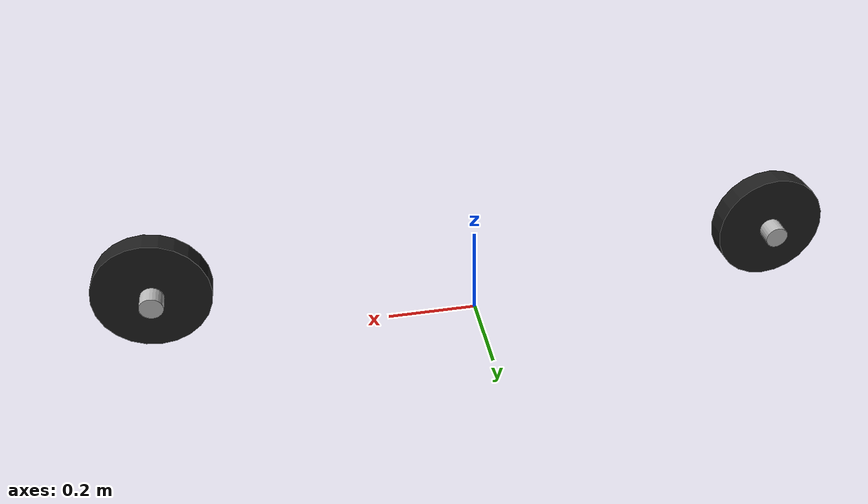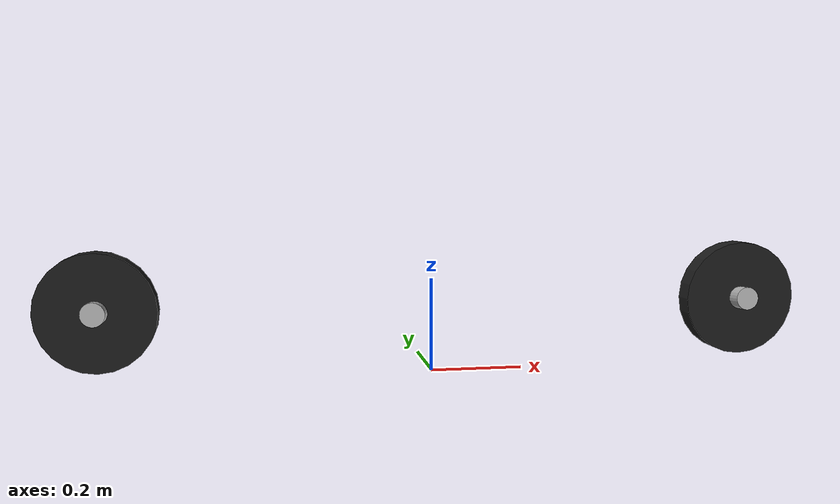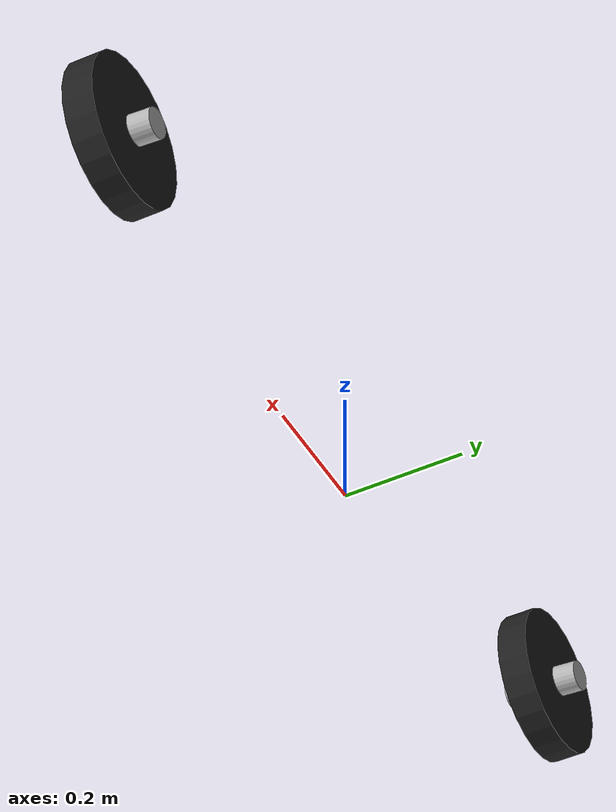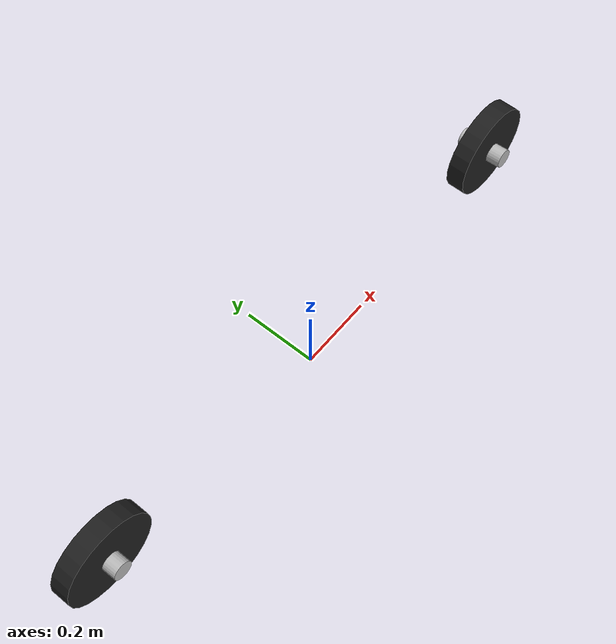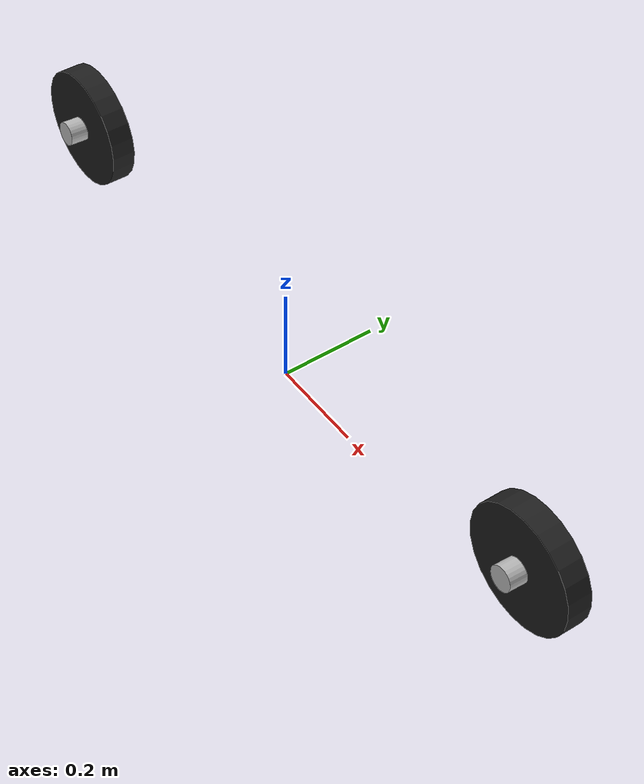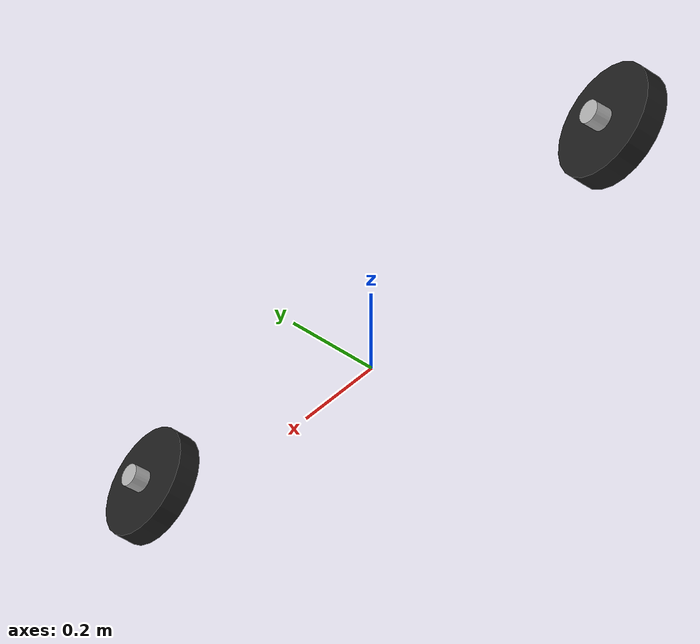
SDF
<?xml version="1.0"?>

<sdf version="1.4">
    <model name="track_drive">
        <static>false</static>
        <pose>0 0 0 0 0 0</pose>

        <include>
            <uri>model://wheel</uri>
            <pose>0.7 0 0.145 0 0 0</pose>
            <name>front_wheel</name>
        </include>

        <include>
            <uri>model://wheel</uri>
            <pose>-0.7 0 0.145 0 0 0</pose> <!-- 0.125 for the wheel, 0.02 for the link -->
            <name>rear_wheel</name>
        </include>
    </model>
</sdf>

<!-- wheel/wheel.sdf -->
<sdf version="1.4">
    <model name="wheel">
        <static>false</static>
        <pose>0 0 0.125 0 0 0</pose>

        <link name="wheel">
            <pose>0 0 0 0 1.5707 1.5707</pose>
            <inertial>
                <pose>0 0 0 0 0 0</pose><!-- at the center of the block-->
                <inertia>
                    <!-- values for mass = 10 -->
                    <ixx>0.0667</ixx>
                    <ixy>0</ixy>
                    <ixz>0</ixz>
                    <iyy>0.0667</iyy>
                    <iyz>0</iyz>
                    <izz>0.0333</izz>
                </inertia>
                <mass>5.0</mass>
            </inertial>
            <collision name="wheel_collision">
                <geometry>
                    <cylinder>
                        <radius>.125</radius>
                        <length>.05</length>
                    </cylinder>
                </geometry>
            </collision>
            <visual name="wheel_visual">
                <geometry>
                    <cylinder>
                        <radius>.125</radius>
                        <length>.05</length>
                    </cylinder>
                </geometry>
                <material>
                    <script>
                        <uri>file://media/materials/scripts/gazebo.material</uri>
                        <name>Gazebo/Black</name>
                    </script>
                </material>
            </visual>
        </link>
        <link name="axle">
            <pose>0 0 0 1.507 0 0</pose>
            <inertial>
                <pose>0 0 0 0 0 0</pose><!-- at the center of the block-->
                <inertia>
                    <!-- values for mass = 10 -->
                    <ixx>0.0067</ixx>
                    <ixy>0</ixy>
                    <ixz>0</ixz>
                    <iyy>0.0067</iyy>
                    <iyz>0</iyz>
                    <izz>0.0033</izz>
                </inertia>
                <mass>0.5</mass>
            </inertial>
            <collision name="axle_collision">
                <geometry>
                    <cylinder>
                        <radius>.025</radius>
                        <length>.125</length>
                    </cylinder>
                </geometry>
            </collision>
            <visual name="axle_visual">
                <geometry>
                    <cylinder>
                        <radius>.025</radius>
                        <length>.125</length>
                    </cylinder>
                </geometry>
            </visual>
        </link>

        <joint name="wheel_axle" type="revolute">
            <pose>0 0 0 0 0 0</pose>
            <child>wheel</child>
            <parent>axle</parent>
            <axis>
                <dynamics>
                    <damping>1</damping>
                    <friction>1</friction>
                </dynamics>
                <limit>
                    <lower>0</lower>
                    <upper>0</upper>
                </limit>
                <xyz>0 1 0</xyz>
            </axis>
        </joint>

    </model>
</sdf>
